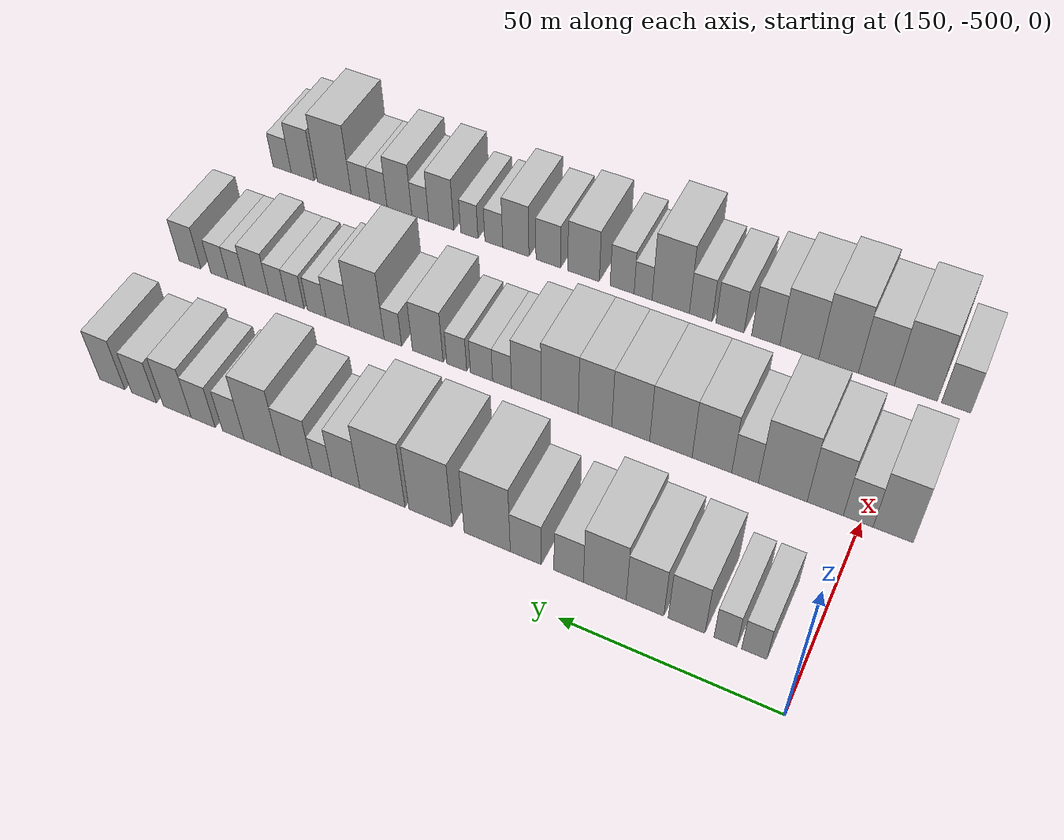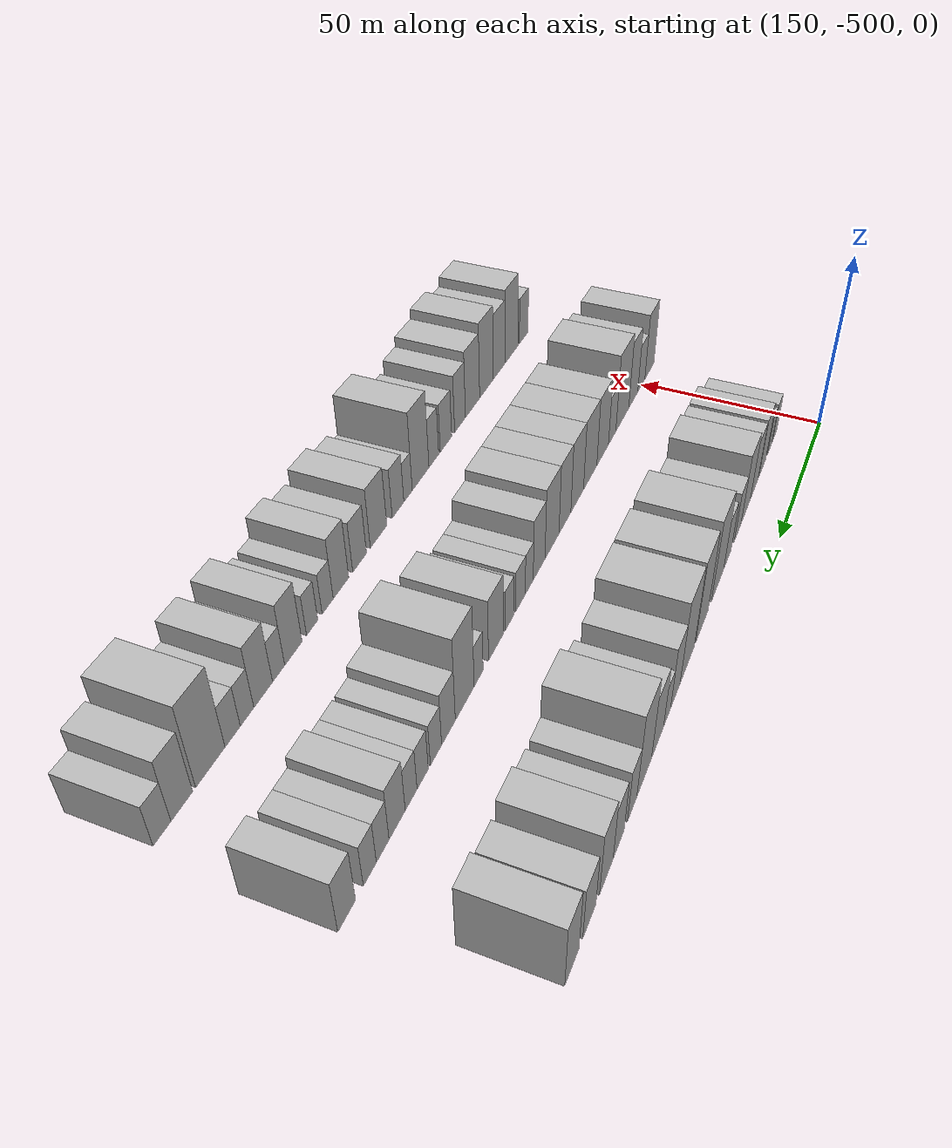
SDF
<sdf version="1.6">
 <world name="default">
  <model name="building_426">
   <static>1</static>
   <pose>170.0000 -489.7649 0 0.000000 0.000000 0.000000</pose>
   <link name="link">
    <pose>0 0 6.00 0 0 0</pose>
    <collision name="collision"><geometry><box><size>20.0000 5.5274 12.0000</size></box></geometry></collision>
    <visual name="visual">
     <cast_shadows>0</cast_shadows>
     <geometry><box><size>20.0000 5.5274 12.0000</size></box></geometry>
     <material>
      <script>
       <uri>model://HANNAS_wall/materials/scripts</uri>
       <uri>model://HANNAS_wall/materials/textures</uri>
       <name>vrc/HANNAS_wall</name>
      </script>
     </material>
    </visual>
   </link>
  </model>
  <model name="building_427">
   <static>1</static>
   <pose>170.0000 -483.4467 0 0.000000 0.000000 0.000000</pose>
   <link name="link">
    <pose>0 0 6.00 0 0 0</pose>
    <collision name="collision"><geometry><box><size>20.0000 5.1091 12.0000</size></box></geometry></collision>
    <visual name="visual">
     <cast_shadows>0</cast_shadows>
     <geometry><box><size>20.0000 5.1091 12.0000</size></box></geometry>
     <material>
      <script>
       <uri>model://HANNAS_wall/materials/scripts</uri>
       <uri>model://HANNAS_wall/materials/textures</uri>
       <name>vrc/HANNAS_wall</name>
      </script>
     </material>
    </visual>
   </link>
  </model>
  <model name="building_428">
   <static>1</static>
   <pose>170.0000 -474.7664 0 0.000000 0.000000 0.000000</pose>
   <link name="link">
    <pose>0 0 9.00 0 0 0</pose>
    <collision name="collision"><geometry><box><size>20.0000 8.2514 18.0000</size></box></geometry></collision>
    <visual name="visual">
     <cast_shadows>0</cast_shadows>
     <geometry><box><size>20.0000 8.2514 18.0000</size></box></geometry>
     <material>
      <script>
       <uri>model://HANNAS_wall/materials/scripts</uri>
       <uri>model://HANNAS_wall/materials/textures</uri>
       <name>vrc/HANNAS_wall</name>
      </script>
     </material>
    </visual>
   </link>
  </model>
  <model name="building_429">
   <static>1</static>
   <pose>170.0000 -465.3327 0 0.000000 0.000000 0.000000</pose>
   <link name="link">
    <pose>0 0 9.00 0 0 0</pose>
    <collision name="collision"><geometry><box><size>20.0000 8.6159 18.0000</size></box></geometry></collision>
    <visual name="visual">
     <cast_shadows>0</cast_shadows>
     <geometry><box><size>20.0000 8.6159 18.0000</size></box></geometry>
     <material>
      <script>
       <uri>model://HANNAS_wall/materials/scripts</uri>
       <uri>model://HANNAS_wall/materials/textures</uri>
       <name>vrc/HANNAS_wall</name>
      </script>
     </material>
    </visual>
   </link>
  </model>
  <model name="building_430">
   <static>1</static>
   <pose>170.0000 -456.0516 0 0.000000 0.000000 0.000000</pose>
   <link name="link">
    <pose>0 0 10.50 0 0 0</pose>
    <collision name="collision"><geometry><box><size>20.0000 9.9464 21.0000</size></box></geometry></collision>
    <visual name="visual">
     <cast_shadows>0</cast_shadows>
     <geometry><box><size>20.0000 9.9464 21.0000</size></box></geometry>
     <material>
      <script>
       <uri>model://HANNAS_wall/materials/scripts</uri>
       <uri>model://HANNAS_wall/materials/textures</uri>
       <name>vrc/HANNAS_wall</name>
      </script>
     </material>
    </visual>
   </link>
  </model>
  <model name="building_431">
   <static>1</static>
   <pose>170.0000 -447.6003 0 0.000000 0.000000 0.000000</pose>
   <link name="link">
    <pose>0 0 7.50 0 0 0</pose>
    <collision name="collision"><geometry><box><size>20.0000 6.9562 15.0000</size></box></geometry></collision>
    <visual name="visual">
     <cast_shadows>0</cast_shadows>
     <geometry><box><size>20.0000 6.9562 15.0000</size></box></geometry>
     <material>
      <script>
       <uri>model://HANNAS_wall/materials/scripts</uri>
       <uri>model://HANNAS_wall/materials/textures</uri>
       <name>vrc/HANNAS_wall</name>
      </script>
     </material>
    </visual>
   </link>
  </model>
  <model name="building_432">
   <static>1</static>
   <pose>170.0000 -437.3843 0 0.000000 0.000000 0.000000</pose>
   <link name="link">
    <pose>0 0 7.50 0 0 0</pose>
    <collision name="collision"><geometry><box><size>20.0000 7.4759 15.0000</size></box></geometry></collision>
    <visual name="visual">
     <cast_shadows>0</cast_shadows>
     <geometry><box><size>20.0000 7.4759 15.0000</size></box></geometry>
     <material>
      <script>
       <uri>model://HANNAS_wall/materials/scripts</uri>
       <uri>model://HANNAS_wall/materials/textures</uri>
       <name>vrc/HANNAS_wall</name>
      </script>
     </material>
    </visual>
   </link>
  </model>
  <model name="building_433">
   <static>1</static>
   <pose>170.0000 -428.0015 0 0.000000 0.000000 0.000000</pose>
   <link name="link">
    <pose>0 0 12.00 0 0 0</pose>
    <collision name="collision"><geometry><box><size>20.0000 11.2898 24.0000</size></box></geometry></collision>
    <visual name="visual">
     <cast_shadows>0</cast_shadows>
     <geometry><box><size>20.0000 11.2898 24.0000</size></box></geometry>
     <material>
      <script>
       <uri>model://HANNAS_wall/materials/scripts</uri>
       <uri>model://HANNAS_wall/materials/textures</uri>
       <name>vrc/HANNAS_wall</name>
      </script>
     </material>
    </visual>
   </link>
  </model>
  <model name="building_434">
   <static>1</static>
   <pose>170.0000 -413.9368 0 0.000000 0.000000 0.000000</pose>
   <link name="link">
    <pose>0 0 12.00 0 0 0</pose>
    <collision name="collision"><geometry><box><size>20.0000 10.8395 24.0000</size></box></geometry></collision>
    <visual name="visual">
     <cast_shadows>0</cast_shadows>
     <geometry><box><size>20.0000 10.8395 24.0000</size></box></geometry>
     <material>
      <script>
       <uri>model://HANNAS_wall/materials/scripts</uri>
       <uri>model://HANNAS_wall/materials/textures</uri>
       <name>vrc/HANNAS_wall</name>
      </script>
     </material>
    </visual>
   </link>
  </model>
  <model name="building_435">
   <static>1</static>
   <pose>170.0000 -401.7224 0 0.000000 0.000000 0.000000</pose>
   <link name="link">
    <pose>0 0 12.00 0 0 0</pose>
    <collision name="collision"><geometry><box><size>20.0000 11.5895 24.0000</size></box></geometry></collision>
    <visual name="visual">
     <cast_shadows>0</cast_shadows>
     <geometry><box><size>20.0000 11.5895 24.0000</size></box></geometry>
     <material>
      <script>
       <uri>model://HANNAS_wall/materials/scripts</uri>
       <uri>model://HANNAS_wall/materials/textures</uri>
       <name>vrc/HANNAS_wall</name>
      </script>
     </material>
    </visual>
   </link>
  </model>
  <model name="building_436">
   <static>1</static>
   <pose>170.0000 -392.2517 0 0.000000 0.000000 0.000000</pose>
   <link name="link">
    <pose>0 0 9.00 0 0 0</pose>
    <collision name="collision"><geometry><box><size>20.0000 7.3518 18.0000</size></box></geometry></collision>
    <visual name="visual">
     <cast_shadows>0</cast_shadows>
     <geometry><box><size>20.0000 7.3518 18.0000</size></box></geometry>
     <material>
      <script>
       <uri>model://HANNAS_wall/materials/scripts</uri>
       <uri>model://HANNAS_wall/materials/textures</uri>
       <name>vrc/HANNAS_wall</name>
      </script>
     </material>
    </visual>
   </link>
  </model>
  <model name="building_437">
   <static>1</static>
   <pose>170.0000 -386.0401 0 0.000000 0.000000 0.000000</pose>
   <link name="link">
    <pose>0 0 6.00 0 0 0</pose>
    <collision name="collision"><geometry><box><size>20.0000 5.0715 12.0000</size></box></geometry></collision>
    <visual name="visual">
     <cast_shadows>0</cast_shadows>
     <geometry><box><size>20.0000 5.0715 12.0000</size></box></geometry>
     <material>
      <script>
       <uri>model://HANNAS_wall/materials/scripts</uri>
       <uri>model://HANNAS_wall/materials/textures</uri>
       <name>vrc/HANNAS_wall</name>
      </script>
     </material>
    </visual>
   </link>
  </model>
  <model name="building_438">
   <static>1</static>
   <pose>170.0000 -379.2460 0 0.000000 0.000000 0.000000</pose>
   <link name="link">
    <pose>0 0 9.00 0 0 0</pose>
    <collision name="collision"><geometry><box><size>20.0000 8.5168 18.0000</size></box></geometry></collision>
    <visual name="visual">
     <cast_shadows>0</cast_shadows>
     <geometry><box><size>20.0000 8.5168 18.0000</size></box></geometry>
     <material>
      <script>
       <uri>model://HANNAS_wall/materials/scripts</uri>
       <uri>model://HANNAS_wall/materials/textures</uri>
       <name>vrc/HANNAS_wall</name>
      </script>
     </material>
    </visual>
   </link>
  </model>
  <model name="building_439">
   <static>1</static>
   <pose>170.0000 -370.0522 0 0.000000 0.000000 0.000000</pose>
   <link name="link">
    <pose>0 0 12.00 0 0 0</pose>
    <collision name="collision"><geometry><box><size>20.0000 9.8707 24.0000</size></box></geometry></collision>
    <visual name="visual">
     <cast_shadows>0</cast_shadows>
     <geometry><box><size>20.0000 9.8707 24.0000</size></box></geometry>
     <material>
      <script>
       <uri>model://HANNAS_wall/materials/scripts</uri>
       <uri>model://HANNAS_wall/materials/textures</uri>
       <name>vrc/HANNAS_wall</name>
      </script>
     </material>
    </visual>
   </link>
  </model>
  <model name="building_440">
   <static>1</static>
   <pose>170.0000 -362.1162 0 0.000000 0.000000 0.000000</pose>
   <link name="link">
    <pose>0 0 7.50 0 0 0</pose>
    <collision name="collision"><geometry><box><size>20.0000 6.0013 15.0000</size></box></geometry></collision>
    <visual name="visual">
     <cast_shadows>0</cast_shadows>
     <geometry><box><size>20.0000 6.0013 15.0000</size></box></geometry>
     <material>
      <script>
       <uri>model://HANNAS_wall/materials/scripts</uri>
       <uri>model://HANNAS_wall/materials/textures</uri>
       <name>vrc/HANNAS_wall</name>
      </script>
     </material>
    </visual>
   </link>
  </model>
  <model name="building_441">
   <static>1</static>
   <pose>170.0000 -353.7595 0 0.000000 0.000000 0.000000</pose>
   <link name="link">
    <pose>0 0 7.50 0 0 0</pose>
    <collision name="collision"><geometry><box><size>20.0000 6.7121 15.0000</size></box></geometry></collision>
    <visual name="visual">
     <cast_shadows>0</cast_shadows>
     <geometry><box><size>20.0000 6.7121 15.0000</size></box></geometry>
     <material>
      <script>
       <uri>model://HANNAS_wall/materials/scripts</uri>
       <uri>model://HANNAS_wall/materials/textures</uri>
       <name>vrc/HANNAS_wall</name>
      </script>
     </material>
    </visual>
   </link>
  </model>
  <model name="building_442">
   <static>1</static>
   <pose>170.0000 -346.4806 0 0.000000 0.000000 0.000000</pose>
   <link name="link">
    <pose>0 0 9.00 0 0 0</pose>
    <collision name="collision"><geometry><box><size>20.0000 7.8458 18.0000</size></box></geometry></collision>
    <visual name="visual">
     <cast_shadows>0</cast_shadows>
     <geometry><box><size>20.0000 7.8458 18.0000</size></box></geometry>
     <material>
      <script>
       <uri>model://HANNAS_wall/materials/scripts</uri>
       <uri>model://HANNAS_wall/materials/textures</uri>
       <name>vrc/HANNAS_wall</name>
      </script>
     </material>
    </visual>
   </link>
  </model>
  <model name="building_443">
   <static>1</static>
   <pose>170.0000 -337.0107 0 0.000000 0.000000 0.000000</pose>
   <link name="link">
    <pose>0 0 7.50 0 0 0</pose>
    <collision name="collision"><geometry><box><size>20.0000 7.0939 15.0000</size></box></geometry></collision>
    <visual name="visual">
     <cast_shadows>0</cast_shadows>
     <geometry><box><size>20.0000 7.0939 15.0000</size></box></geometry>
     <material>
      <script>
       <uri>model://HANNAS_wall/materials/scripts</uri>
       <uri>model://HANNAS_wall/materials/textures</uri>
       <name>vrc/HANNAS_wall</name>
      </script>
     </material>
    </visual>
   </link>
  </model>
  <model name="building_444">
   <static>1</static>
   <pose>170.0000 -327.8405 0 0.000000 0.000000 0.000000</pose>
   <link name="link">
    <pose>0 0 9.00 0 0 0</pose>
    <collision name="collision"><geometry><box><size>20.0000 7.2463 18.0000</size></box></geometry></collision>
    <visual name="visual">
     <cast_shadows>0</cast_shadows>
     <geometry><box><size>20.0000 7.2463 18.0000</size></box></geometry>
     <material>
      <script>
       <uri>model://HANNAS_wall/materials/scripts</uri>
       <uri>model://HANNAS_wall/materials/textures</uri>
       <name>vrc/HANNAS_wall</name>
      </script>
     </material>
    </visual>
   </link>
  </model>
  <model name="building_555">
   <static>1</static>
   <pose>210.0000 -507.2178 0 0.000000 0.000000 0.000000</pose>
   <link name="link">
    <pose>0 0 10.50 0 0 0</pose>
    <collision name="collision"><geometry><box><size>20.0000 9.0789 21.0000</size></box></geometry></collision>
    <visual name="visual">
     <cast_shadows>0</cast_shadows>
     <geometry><box><size>20.0000 9.0789 21.0000</size></box></geometry>
     <material>
      <script>
       <uri>model://HANNAS_wall/materials/scripts</uri>
       <uri>model://HANNAS_wall/materials/textures</uri>
       <name>vrc/HANNAS_wall</name>
      </script>
     </material>
    </visual>
   </link>
  </model>
  <model name="building_556">
   <static>1</static>
   <pose>210.0000 -499.2651 0 0.000000 0.000000 0.000000</pose>
   <link name="link">
    <pose>0 0 7.50 0 0 0</pose>
    <collision name="collision"><geometry><box><size>20.0000 6.8264 15.0000</size></box></geometry></collision>
    <visual name="visual">
     <cast_shadows>0</cast_shadows>
     <geometry><box><size>20.0000 6.8264 15.0000</size></box></geometry>
     <material>
      <script>
       <uri>model://HANNAS_wall/materials/scripts</uri>
       <uri>model://HANNAS_wall/materials/textures</uri>
       <name>vrc/HANNAS_wall</name>
      </script>
     </material>
    </visual>
   </link>
  </model>
  <model name="building_557">
   <static>1</static>
   <pose>210.0000 -491.6516 0 0.000000 0.000000 0.000000</pose>
   <link name="link">
    <pose>0 0 10.50 0 0 0</pose>
    <collision name="collision"><geometry><box><size>20.0000 8.4005 21.0000</size></box></geometry></collision>
    <visual name="visual">
     <cast_shadows>0</cast_shadows>
     <geometry><box><size>20.0000 8.4005 21.0000</size></box></geometry>
     <material>
      <script>
       <uri>model://HANNAS_wall/materials/scripts</uri>
       <uri>model://HANNAS_wall/materials/textures</uri>
       <name>vrc/HANNAS_wall</name>
      </script>
     </material>
    </visual>
   </link>
  </model>
  <model name="building_558">
   <static>1</static>
   <pose>210.0000 -481.6776 0 0.000000 0.000000 0.000000</pose>
   <link name="link">
    <pose>0 0 12.00 0 0 0</pose>
    <collision name="collision"><geometry><box><size>20.0000 11.5476 24.0000</size></box></geometry></collision>
    <visual name="visual">
     <cast_shadows>0</cast_shadows>
     <geometry><box><size>20.0000 11.5476 24.0000</size></box></geometry>
     <material>
      <script>
       <uri>model://HANNAS_wall/materials/scripts</uri>
       <uri>model://HANNAS_wall/materials/textures</uri>
       <name>vrc/HANNAS_wall</name>
      </script>
     </material>
    </visual>
   </link>
  </model>
  <model name="building_559">
   <static>1</static>
   <pose>210.0000 -472.7165 0 0.000000 0.000000 0.000000</pose>
   <link name="link">
    <pose>0 0 7.50 0 0 0</pose>
    <collision name="collision"><geometry><box><size>20.0000 6.3744 15.0000</size></box></geometry></collision>
    <visual name="visual">
     <cast_shadows>0</cast_shadows>
     <geometry><box><size>20.0000 6.3744 15.0000</size></box></geometry>
     <material>
      <script>
       <uri>model://HANNAS_wall/materials/scripts</uri>
       <uri>model://HANNAS_wall/materials/textures</uri>
       <name>vrc/HANNAS_wall</name>
      </script>
     </material>
    </visual>
   </link>
  </model>
  <model name="building_560">
   <static>1</static>
   <pose>210.0000 -464.7133 0 0.000000 0.000000 0.000000</pose>
   <link name="link">
    <pose>0 0 10.50 0 0 0</pose>
    <collision name="collision"><geometry><box><size>20.0000 9.6320 21.0000</size></box></geometry></collision>
    <visual name="visual">
     <cast_shadows>0</cast_shadows>
     <geometry><box><size>20.0000 9.6320 21.0000</size></box></geometry>
     <material>
      <script>
       <uri>model://HANNAS_wall/materials/scripts</uri>
       <uri>model://HANNAS_wall/materials/textures</uri>
       <name>vrc/HANNAS_wall</name>
      </script>
     </material>
    </visual>
   </link>
  </model>
  <model name="building_561">
   <static>1</static>
   <pose>210.0000 -454.6534 0 0.000000 0.000000 0.000000</pose>
   <link name="link">
    <pose>0 0 10.50 0 0 0</pose>
    <collision name="collision"><geometry><box><size>20.0000 10.4879 21.0000</size></box></geometry></collision>
    <visual name="visual">
     <cast_shadows>0</cast_shadows>
     <geometry><box><size>20.0000 10.4879 21.0000</size></box></geometry>
     <material>
      <script>
       <uri>model://HANNAS_wall/materials/scripts</uri>
       <uri>model://HANNAS_wall/materials/textures</uri>
       <name>vrc/HANNAS_wall</name>
      </script>
     </material>
    </visual>
   </link>
  </model>
  <model name="building_562">
   <static>1</static>
   <pose>210.0000 -444.6317 0 0.000000 0.000000 0.000000</pose>
   <link name="link">
    <pose>0 0 10.50 0 0 0</pose>
    <collision name="collision"><geometry><box><size>20.0000 9.5554 21.0000</size></box></geometry></collision>
    <visual name="visual">
     <cast_shadows>0</cast_shadows>
     <geometry><box><size>20.0000 9.5554 21.0000</size></box></geometry>
     <material>
      <script>
       <uri>model://HANNAS_wall/materials/scripts</uri>
       <uri>model://HANNAS_wall/materials/textures</uri>
       <name>vrc/HANNAS_wall</name>
      </script>
     </material>
    </visual>
   </link>
  </model>
  <model name="building_563">
   <static>1</static>
   <pose>210.0000 -435.5617 0 0.000000 0.000000 0.000000</pose>
   <link name="link">
    <pose>0 0 10.50 0 0 0</pose>
    <collision name="collision"><geometry><box><size>20.0000 8.5847 21.0000</size></box></geometry></collision>
    <visual name="visual">
     <cast_shadows>0</cast_shadows>
     <geometry><box><size>20.0000 8.5847 21.0000</size></box></geometry>
     <material>
      <script>
       <uri>model://HANNAS_wall/materials/scripts</uri>
       <uri>model://HANNAS_wall/materials/textures</uri>
       <name>vrc/HANNAS_wall</name>
      </script>
     </material>
    </visual>
   </link>
  </model>
  <model name="building_564">
   <static>1</static>
   <pose>210.0000 -426.4533 0 0.000000 0.000000 0.000000</pose>
   <link name="link">
    <pose>0 0 10.50 0 0 0</pose>
    <collision name="collision"><geometry><box><size>20.0000 9.6320 21.0000</size></box></geometry></collision>
    <visual name="visual">
     <cast_shadows>0</cast_shadows>
     <geometry><box><size>20.0000 9.6320 21.0000</size></box></geometry>
     <material>
      <script>
       <uri>model://HANNAS_wall/materials/scripts</uri>
       <uri>model://HANNAS_wall/materials/textures</uri>
       <name>vrc/HANNAS_wall</name>
      </script>
     </material>
    </visual>
   </link>
  </model>
  <model name="building_565">
   <static>1</static>
   <pose>210.0000 -417.7530 0 0.000000 0.000000 0.000000</pose>
   <link name="link">
    <pose>0 0 9.00 0 0 0</pose>
    <collision name="collision"><geometry><box><size>20.0000 7.7686 18.0000</size></box></geometry></collision>
    <visual name="visual">
     <cast_shadows>0</cast_shadows>
     <geometry><box><size>20.0000 7.7686 18.0000</size></box></geometry>
     <material>
      <script>
       <uri>model://HANNAS_wall/materials/scripts</uri>
       <uri>model://HANNAS_wall/materials/textures</uri>
       <name>vrc/HANNAS_wall</name>
      </script>
     </material>
    </visual>
   </link>
  </model>
  <model name="building_566">
   <static>1</static>
   <pose>210.0000 -411.3527 0 0.000000 0.000000 0.000000</pose>
   <link name="link">
    <pose>0 0 6.00 0 0 0</pose>
    <collision name="collision"><geometry><box><size>20.0000 5.0319 12.0000</size></box></geometry></collision>
    <visual name="visual">
     <cast_shadows>0</cast_shadows>
     <geometry><box><size>20.0000 5.0319 12.0000</size></box></geometry>
     <material>
      <script>
       <uri>model://HANNAS_wall/materials/scripts</uri>
       <uri>model://HANNAS_wall/materials/textures</uri>
       <name>vrc/HANNAS_wall</name>
      </script>
     </material>
    </visual>
   </link>
  </model>
  <model name="building_567">
   <static>1</static>
   <pose>210.0000 -405.8599 0 0.000000 0.000000 0.000000</pose>
   <link name="link">
    <pose>0 0 6.00 0 0 0</pose>
    <collision name="collision"><geometry><box><size>20.0000 5.9537 12.0000</size></box></geometry></collision>
    <visual name="visual">
     <cast_shadows>0</cast_shadows>
     <geometry><box><size>20.0000 5.9537 12.0000</size></box></geometry>
     <material>
      <script>
       <uri>model://HANNAS_wall/materials/scripts</uri>
       <uri>model://HANNAS_wall/materials/textures</uri>
       <name>vrc/HANNAS_wall</name>
      </script>
     </material>
    </visual>
   </link>
  </model>
  <model name="building_568">
   <static>1</static>
   <pose>210.0000 -399.1806 0 0.000000 0.000000 0.000000</pose>
   <link name="link">
    <pose>0 0 6.00 0 0 0</pose>
    <collision name="collision"><geometry><box><size>20.0000 5.4050 12.0000</size></box></geometry></collision>
    <visual name="visual">
     <cast_shadows>0</cast_shadows>
     <geometry><box><size>20.0000 5.4050 12.0000</size></box></geometry>
     <material>
      <script>
       <uri>model://HANNAS_wall/materials/scripts</uri>
       <uri>model://HANNAS_wall/materials/textures</uri>
       <name>vrc/HANNAS_wall</name>
      </script>
     </material>
    </visual>
   </link>
  </model>
  <model name="building_569">
   <static>1</static>
   <pose>210.0000 -391.2524 0 0.000000 0.000000 0.000000</pose>
   <link name="link">
    <pose>0 0 9.00 0 0 0</pose>
    <collision name="collision"><geometry><box><size>20.0000 8.4514 18.0000</size></box></geometry></collision>
    <visual name="visual">
     <cast_shadows>0</cast_shadows>
     <geometry><box><size>20.0000 8.4514 18.0000</size></box></geometry>
     <material>
      <script>
       <uri>model://HANNAS_wall/materials/scripts</uri>
       <uri>model://HANNAS_wall/materials/textures</uri>
       <name>vrc/HANNAS_wall</name>
      </script>
     </material>
    </visual>
   </link>
  </model>
  <model name="building_570">
   <static>1</static>
   <pose>210.0000 -381.5879 0 0.000000 0.000000 0.000000</pose>
   <link name="link">
    <pose>0 0 6.00 0 0 0</pose>
    <collision name="collision"><geometry><box><size>20.0000 4.8775 12.0000</size></box></geometry></collision>
    <visual name="visual">
     <cast_shadows>0</cast_shadows>
     <geometry><box><size>20.0000 4.8775 12.0000</size></box></geometry>
     <material>
      <script>
       <uri>model://HANNAS_wall/materials/scripts</uri>
       <uri>model://HANNAS_wall/materials/textures</uri>
       <name>vrc/HANNAS_wall</name>
      </script>
     </material>
    </visual>
   </link>
  </model>
  <model name="building_571">
   <static>1</static>
   <pose>210.0000 -374.2663 0 0.000000 0.000000 0.000000</pose>
   <link name="link">
    <pose>0 0 12.00 0 0 0</pose>
    <collision name="collision"><geometry><box><size>20.0000 9.7659 24.0000</size></box></geometry></collision>
    <visual name="visual">
     <cast_shadows>0</cast_shadows>
     <geometry><box><size>20.0000 9.7659 24.0000</size></box></geometry>
     <material>
      <script>
       <uri>model://HANNAS_wall/materials/scripts</uri>
       <uri>model://HANNAS_wall/materials/textures</uri>
       <name>vrc/HANNAS_wall</name>
      </script>
     </material>
    </visual>
   </link>
  </model>
  <model name="building_572">
   <static>1</static>
   <pose>210.0000 -365.9811 0 0.000000 0.000000 0.000000</pose>
   <link name="link">
    <pose>0 0 7.50 0 0 0</pose>
    <collision name="collision"><geometry><box><size>20.0000 6.8044 15.0000</size></box></geometry></collision>
    <visual name="visual">
     <cast_shadows>0</cast_shadows>
     <geometry><box><size>20.0000 6.8044 15.0000</size></box></geometry>
     <material>
      <script>
       <uri>model://HANNAS_wall/materials/scripts</uri>
       <uri>model://HANNAS_wall/materials/textures</uri>
       <name>vrc/HANNAS_wall</name>
      </script>
     </material>
    </visual>
   </link>
  </model>
  <model name="building_573">
   <static>1</static>
   <pose>210.0000 -359.8956 0 0.000000 0.000000 0.000000</pose>
   <link name="link">
    <pose>0 0 6.00 0 0 0</pose>
    <collision name="collision"><geometry><box><size>20.0000 5.3666 12.0000</size></box></geometry></collision>
    <visual name="visual">
     <cast_shadows>0</cast_shadows>
     <geometry><box><size>20.0000 5.3666 12.0000</size></box></geometry>
     <material>
      <script>
       <uri>model://HANNAS_wall/materials/scripts</uri>
       <uri>model://HANNAS_wall/materials/textures</uri>
       <name>vrc/HANNAS_wall</name>
      </script>
     </material>
    </visual>
   </link>
  </model>
  <model name="building_574">
   <static>1</static>
   <pose>210.0000 -353.6460 0 0.000000 0.000000 0.000000</pose>
   <link name="link">
    <pose>0 0 6.00 0 0 0</pose>
    <collision name="collision"><geometry><box><size>20.0000 5.1326 12.0000</size></box></geometry></collision>
    <visual name="visual">
     <cast_shadows>0</cast_shadows>
     <geometry><box><size>20.0000 5.1326 12.0000</size></box></geometry>
     <material>
      <script>
       <uri>model://HANNAS_wall/materials/scripts</uri>
       <uri>model://HANNAS_wall/materials/textures</uri>
       <name>vrc/HANNAS_wall</name>
      </script>
     </material>
    </visual>
   </link>
  </model>
  <model name="building_575">
   <static>1</static>
   <pose>210.0000 -348.4470 0 0.000000 0.000000 0.000000</pose>
   <link name="link">
    <pose>0 0 6.00 0 0 0</pose>
    <collision name="collision"><geometry><box><size>20.0000 5.2654 12.0000</size></box></geometry></collision>
    <visual name="visual">
     <cast_shadows>0</cast_shadows>
     <geometry><box><size>20.0000 5.2654 12.0000</size></box></geometry>
     <material>
      <script>
       <uri>model://HANNAS_wall/materials/scripts</uri>
       <uri>model://HANNAS_wall/materials/textures</uri>
       <name>vrc/HANNAS_wall</name>
      </script>
     </material>
    </visual>
   </link>
  </model>
  <model name="building_576">
   <static>1</static>
   <pose>210.0000 -342.3441 0 0.000000 0.000000 0.000000</pose>
   <link name="link">
    <pose>0 0 7.50 0 0 0</pose>
    <collision name="collision"><geometry><box><size>20.0000 6.9403 15.0000</size></box></geometry></collision>
    <visual name="visual">
     <cast_shadows>0</cast_shadows>
     <geometry><box><size>20.0000 6.9403 15.0000</size></box></geometry>
     <material>
      <script>
       <uri>model://HANNAS_wall/materials/scripts</uri>
       <uri>model://HANNAS_wall/materials/textures</uri>
       <name>vrc/HANNAS_wall</name>
      </script>
     </material>
    </visual>
   </link>
  </model>
  <model name="building_577">
   <static>1</static>
   <pose>210.0000 -336.2616 0 0.000000 0.000000 0.000000</pose>
   <link name="link">
    <pose>0 0 6.00 0 0 0</pose>
    <collision name="collision"><geometry><box><size>20.0000 5.2246 12.0000</size></box></geometry></collision>
    <visual name="visual">
     <cast_shadows>0</cast_shadows>
     <geometry><box><size>20.0000 5.2246 12.0000</size></box></geometry>
     <material>
      <script>
       <uri>model://HANNAS_wall/materials/scripts</uri>
       <uri>model://HANNAS_wall/materials/textures</uri>
       <name>vrc/HANNAS_wall</name>
      </script>
     </material>
    </visual>
   </link>
  </model>
  <model name="building_578">
   <static>1</static>
   <pose>210.0000 -331.0444 0 0.000000 0.000000 0.000000</pose>
   <link name="link">
    <pose>0 0 6.00 0 0 0</pose>
    <collision name="collision"><geometry><box><size>20.0000 5.2099 12.0000</size></box></geometry></collision>
    <visual name="visual">
     <cast_shadows>0</cast_shadows>
     <geometry><box><size>20.0000 5.2099 12.0000</size></box></geometry>
     <material>
      <script>
       <uri>model://HANNAS_wall/materials/scripts</uri>
       <uri>model://HANNAS_wall/materials/textures</uri>
       <name>vrc/HANNAS_wall</name>
      </script>
     </material>
    </visual>
   </link>
  </model>
  <model name="building_579">
   <static>1</static>
   <pose>210.0000 -322.0977 0 0.000000 0.000000 0.000000</pose>
   <link name="link">
    <pose>0 0 7.50 0 0 0</pose>
    <collision name="collision"><geometry><box><size>20.0000 6.6834 15.0000</size></box></geometry></collision>
    <visual name="visual">
     <cast_shadows>0</cast_shadows>
     <geometry><box><size>20.0000 6.6834 15.0000</size></box></geometry>
     <material>
      <script>
       <uri>model://HANNAS_wall/materials/scripts</uri>
       <uri>model://HANNAS_wall/materials/textures</uri>
       <name>vrc/HANNAS_wall</name>
      </script>
     </material>
    </visual>
   </link>
  </model>
  <model name="building_701">
   <static>1</static>
   <pose>250.0000 -510.4082 0 0.000000 0.000000 0.000000</pose>
   <link name="link">
    <pose>0 0 7.50 0 0 0</pose>
    <collision name="collision"><geometry><box><size>20.0000 7.0350 15.0000</size></box></geometry></collision>
    <visual name="visual">
     <cast_shadows>0</cast_shadows>
     <geometry><box><size>20.0000 7.0350 15.0000</size></box></geometry>
     <material>
      <script>
       <uri>model://HANNAS_wall/materials/scripts</uri>
       <uri>model://HANNAS_wall/materials/textures</uri>
       <name>vrc/HANNAS_wall</name>
      </script>
     </material>
    </visual>
   </link>
  </model>
  <model name="building_702">
   <static>1</static>
   <pose>250.0000 -500.6606 0 0.000000 0.000000 0.000000</pose>
   <link name="link">
    <pose>0 0 12.00 0 0 0</pose>
    <collision name="collision"><geometry><box><size>20.0000 10.4601 24.0000</size></box></geometry></collision>
    <visual name="visual">
     <cast_shadows>0</cast_shadows>
     <geometry><box><size>20.0000 10.4601 24.0000</size></box></geometry>
     <material>
      <script>
       <uri>model://HANNAS_wall/materials/scripts</uri>
       <uri>model://HANNAS_wall/materials/textures</uri>
       <name>vrc/HANNAS_wall</name>
      </script>
     </material>
    </visual>
   </link>
  </model>
  <model name="building_703">
   <static>1</static>
   <pose>250.0000 -490.9945 0 0.000000 0.000000 0.000000</pose>
   <link name="link">
    <pose>0 0 10.50 0 0 0</pose>
    <collision name="collision"><geometry><box><size>20.0000 8.8722 21.0000</size></box></geometry></collision>
    <visual name="visual">
     <cast_shadows>0</cast_shadows>
     <geometry><box><size>20.0000 8.8722 21.0000</size></box></geometry>
     <material>
      <script>
       <uri>model://HANNAS_wall/materials/scripts</uri>
       <uri>model://HANNAS_wall/materials/textures</uri>
       <name>vrc/HANNAS_wall</name>
      </script>
     </material>
    </visual>
   </link>
  </model>
  <model name="building_704">
   <static>1</static>
   <pose>250.0000 -481.6037 0 0.000000 0.000000 0.000000</pose>
   <link name="link">
    <pose>0 0 12.00 0 0 0</pose>
    <collision name="collision"><geometry><box><size>20.0000 9.9094 24.0000</size></box></geometry></collision>
    <visual name="visual">
     <cast_shadows>0</cast_shadows>
     <geometry><box><size>20.0000 9.9094 24.0000</size></box></geometry>
     <material>
      <script>
       <uri>model://HANNAS_wall/materials/scripts</uri>
       <uri>model://HANNAS_wall/materials/textures</uri>
       <name>vrc/HANNAS_wall</name>
      </script>
     </material>
    </visual>
   </link>
  </model>
  <model name="building_705">
   <static>1</static>
   <pose>250.0000 -471.6895 0 0.000000 0.000000 0.000000</pose>
   <link name="link">
    <pose>0 0 10.50 0 0 0</pose>
    <collision name="collision"><geometry><box><size>20.0000 9.9190 21.0000</size></box></geometry></collision>
    <visual name="visual">
     <cast_shadows>0</cast_shadows>
     <geometry><box><size>20.0000 9.9190 21.0000</size></box></geometry>
     <material>
      <script>
       <uri>model://HANNAS_wall/materials/scripts</uri>
       <uri>model://HANNAS_wall/materials/textures</uri>
       <name>vrc/HANNAS_wall</name>
      </script>
     </material>
    </visual>
   </link>
  </model>
  <model name="building_706">
   <static>1</static>
   <pose>250.0000 -463.0839 0 0.000000 0.000000 0.000000</pose>
   <link name="link">
    <pose>0 0 9.00 0 0 0</pose>
    <collision name="collision"><geometry><box><size>20.0000 7.2922 18.0000</size></box></geometry></collision>
    <visual name="visual">
     <cast_shadows>0</cast_shadows>
     <geometry><box><size>20.0000 7.2922 18.0000</size></box></geometry>
     <material>
      <script>
       <uri>model://HANNAS_wall/materials/scripts</uri>
       <uri>model://HANNAS_wall/materials/textures</uri>
       <name>vrc/HANNAS_wall</name>
      </script>
     </material>
    </visual>
   </link>
  </model>
  <model name="building_707">
   <static>1</static>
   <pose>250.0000 -453.7722 0 0.000000 0.000000 0.000000</pose>
   <link name="link">
    <pose>0 0 7.50 0 0 0</pose>
    <collision name="collision"><geometry><box><size>20.0000 7.3312 15.0000</size></box></geometry></collision>
    <visual name="visual">
     <cast_shadows>0</cast_shadows>
     <geometry><box><size>20.0000 7.3312 15.0000</size></box></geometry>
     <material>
      <script>
       <uri>model://HANNAS_wall/materials/scripts</uri>
       <uri>model://HANNAS_wall/materials/textures</uri>
       <name>vrc/HANNAS_wall</name>
      </script>
     </material>
    </visual>
   </link>
  </model>
  <model name="building_708">
   <static>1</static>
   <pose>250.0000 -446.0794 0 0.000000 0.000000 0.000000</pose>
   <link name="link">
    <pose>0 0 7.50 0 0 0</pose>
    <collision name="collision"><geometry><box><size>20.0000 6.0543 15.0000</size></box></geometry></collision>
    <visual name="visual">
     <cast_shadows>0</cast_shadows>
     <geometry><box><size>20.0000 6.0543 15.0000</size></box></geometry>
     <material>
      <script>
       <uri>model://HANNAS_wall/materials/scripts</uri>
       <uri>model://HANNAS_wall/materials/textures</uri>
       <name>vrc/HANNAS_wall</name>
      </script>
     </material>
    </visual>
   </link>
  </model>
  <model name="building_709">
   <static>1</static>
   <pose>250.0000 -438.0389 0 0.000000 0.000000 0.000000</pose>
   <link name="link">
    <pose>0 0 12.00 0 0 0</pose>
    <collision name="collision"><geometry><box><size>20.0000 10.0268 24.0000</size></box></geometry></collision>
    <visual name="visual">
     <cast_shadows>0</cast_shadows>
     <geometry><box><size>20.0000 10.0268 24.0000</size></box></geometry>
     <material>
      <script>
       <uri>model://HANNAS_wall/materials/scripts</uri>
       <uri>model://HANNAS_wall/materials/textures</uri>
       <name>vrc/HANNAS_wall</name>
      </script>
     </material>
    </visual>
   </link>
  </model>
  <model name="building_710">
   <static>1</static>
   <pose>250.0000 -430.5880 0 0.000000 0.000000 0.000000</pose>
   <link name="link">
    <pose>0 0 6.00 0 0 0</pose>
    <collision name="collision"><geometry><box><size>20.0000 4.8750 12.0000</size></box></geometry></collision>
    <visual name="visual">
     <cast_shadows>0</cast_shadows>
     <geometry><box><size>20.0000 4.8750 12.0000</size></box></geometry>
     <material>
      <script>
       <uri>model://HANNAS_wall/materials/scripts</uri>
       <uri>model://HANNAS_wall/materials/textures</uri>
       <name>vrc/HANNAS_wall</name>
      </script>
     </material>
    </visual>
   </link>
  </model>
  <model name="building_711">
   <static>1</static>
   <pose>250.0000 -424.8645 0 0.000000 0.000000 0.000000</pose>
   <link name="link">
    <pose>0 0 7.50 0 0 0</pose>
    <collision name="collision"><geometry><box><size>20.0000 6.5720 15.0000</size></box></geometry></collision>
    <visual name="visual">
     <cast_shadows>0</cast_shadows>
     <geometry><box><size>20.0000 6.5720 15.0000</size></box></geometry>
     <material>
      <script>
       <uri>model://HANNAS_wall/materials/scripts</uri>
       <uri>model://HANNAS_wall/materials/textures</uri>
       <name>vrc/HANNAS_wall</name>
      </script>
     </material>
    </visual>
   </link>
  </model>
  <model name="building_712">
   <static>1</static>
   <pose>250.0000 -414.1763 0 0.000000 0.000000 0.000000</pose>
   <link name="link">
    <pose>0 0 9.00 0 0 0</pose>
    <collision name="collision"><geometry><box><size>20.0000 8.8043 18.0000</size></box></geometry></collision>
    <visual name="visual">
     <cast_shadows>0</cast_shadows>
     <geometry><box><size>20.0000 8.8043 18.0000</size></box></geometry>
     <material>
      <script>
       <uri>model://HANNAS_wall/materials/scripts</uri>
       <uri>model://HANNAS_wall/materials/textures</uri>
       <name>vrc/HANNAS_wall</name>
      </script>
     </material>
    </visual>
   </link>
  </model>
  <model name="building_713">
   <static>1</static>
   <pose>250.0000 -404.2823 0 0.000000 0.000000 0.000000</pose>
   <link name="link">
    <pose>0 0 7.50 0 0 0</pose>
    <collision name="collision"><geometry><box><size>20.0000 6.9837 15.0000</size></box></geometry></collision>
    <visual name="visual">
     <cast_shadows>0</cast_shadows>
     <geometry><box><size>20.0000 6.9837 15.0000</size></box></geometry>
     <material>
      <script>
       <uri>model://HANNAS_wall/materials/scripts</uri>
       <uri>model://HANNAS_wall/materials/textures</uri>
       <name>vrc/HANNAS_wall</name>
      </script>
     </material>
    </visual>
   </link>
  </model>
  <model name="building_714">
   <static>1</static>
   <pose>250.0000 -395.0349 0 0.000000 0.000000 0.000000</pose>
   <link name="link">
    <pose>0 0 9.00 0 0 0</pose>
    <collision name="collision"><geometry><box><size>20.0000 7.5111 18.0000</size></box></geometry></collision>
    <visual name="visual">
     <cast_shadows>0</cast_shadows>
     <geometry><box><size>20.0000 7.5111 18.0000</size></box></geometry>
     <material>
      <script>
       <uri>model://HANNAS_wall/materials/scripts</uri>
       <uri>model://HANNAS_wall/materials/textures</uri>
       <name>vrc/HANNAS_wall</name>
      </script>
     </material>
    </visual>
   </link>
  </model>
  <model name="building_715">
   <static>1</static>
   <pose>250.0000 -388.6736 0 0.000000 0.000000 0.000000</pose>
   <link name="link">
    <pose>0 0 6.00 0 0 0</pose>
    <collision name="collision"><geometry><box><size>20.0000 5.2116 12.0000</size></box></geometry></collision>
    <visual name="visual">
     <cast_shadows>0</cast_shadows>
     <geometry><box><size>20.0000 5.2116 12.0000</size></box></geometry>
     <material>
      <script>
       <uri>model://HANNAS_wall/materials/scripts</uri>
       <uri>model://HANNAS_wall/materials/textures</uri>
       <name>vrc/HANNAS_wall</name>
      </script>
     </material>
    </visual>
   </link>
  </model>
  <model name="building_716">
   <static>1</static>
   <pose>250.0000 -381.5344 0 0.000000 0.000000 0.000000</pose>
   <link name="link">
    <pose>0 0 6.00 0 0 0</pose>
    <collision name="collision"><geometry><box><size>20.0000 5.0667 12.0000</size></box></geometry></collision>
    <visual name="visual">
     <cast_shadows>0</cast_shadows>
     <geometry><box><size>20.0000 5.0667 12.0000</size></box></geometry>
     <material>
      <script>
       <uri>model://HANNAS_wall/materials/scripts</uri>
       <uri>model://HANNAS_wall/materials/textures</uri>
       <name>vrc/HANNAS_wall</name>
      </script>
     </material>
    </visual>
   </link>
  </model>
  <model name="building_717">
   <static>1</static>
   <pose>250.0000 -373.2602 0 0.000000 0.000000 0.000000</pose>
   <link name="link">
    <pose>0 0 9.00 0 0 0</pose>
    <collision name="collision"><geometry><box><size>20.0000 7.4817 18.0000</size></box></geometry></collision>
    <visual name="visual">
     <cast_shadows>0</cast_shadows>
     <geometry><box><size>20.0000 7.4817 18.0000</size></box></geometry>
     <material>
      <script>
       <uri>model://HANNAS_wall/materials/scripts</uri>
       <uri>model://HANNAS_wall/materials/textures</uri>
       <name>vrc/HANNAS_wall</name>
      </script>
     </material>
    </visual>
   </link>
  </model>
  <model name="building_718">
   <static>1</static>
   <pose>250.0000 -366.9772 0 0.000000 0.000000 0.000000</pose>
   <link name="link">
    <pose>0 0 6.00 0 0 0</pose>
    <collision name="collision"><geometry><box><size>20.0000 5.0844 12.0000</size></box></geometry></collision>
    <visual name="visual">
     <cast_shadows>0</cast_shadows>
     <geometry><box><size>20.0000 5.0844 12.0000</size></box></geometry>
     <material>
      <script>
       <uri>model://HANNAS_wall/materials/scripts</uri>
       <uri>model://HANNAS_wall/materials/textures</uri>
       <name>vrc/HANNAS_wall</name>
      </script>
     </material>
    </visual>
   </link>
  </model>
  <model name="building_719">
   <static>1</static>
   <pose>250.0000 -360.6798 0 0.000000 0.000000 0.000000</pose>
   <link name="link">
    <pose>0 0 9.00 0 0 0</pose>
    <collision name="collision"><geometry><box><size>20.0000 7.5104 18.0000</size></box></geometry></collision>
    <visual name="visual">
     <cast_shadows>0</cast_shadows>
     <geometry><box><size>20.0000 7.5104 18.0000</size></box></geometry>
     <material>
      <script>
       <uri>model://HANNAS_wall/materials/scripts</uri>
       <uri>model://HANNAS_wall/materials/textures</uri>
       <name>vrc/HANNAS_wall</name>
      </script>
     </material>
    </visual>
   </link>
  </model>
  <model name="building_720">
   <static>1</static>
   <pose>250.0000 -354.2950 0 0.000000 0.000000 0.000000</pose>
   <link name="link">
    <pose>0 0 6.00 0 0 0</pose>
    <collision name="collision"><geometry><box><size>20.0000 5.2592 12.0000</size></box></geometry></collision>
    <visual name="visual">
     <cast_shadows>0</cast_shadows>
     <geometry><box><size>20.0000 5.2592 12.0000</size></box></geometry>
     <material>
      <script>
       <uri>model://HANNAS_wall/materials/scripts</uri>
       <uri>model://HANNAS_wall/materials/textures</uri>
       <name>vrc/HANNAS_wall</name>
      </script>
     </material>
    </visual>
   </link>
  </model>
  <model name="building_721">
   <static>1</static>
   <pose>250.0000 -348.8041 0 0.000000 0.000000 0.000000</pose>
   <link name="link">
    <pose>0 0 6.00 0 0 0</pose>
    <collision name="collision"><geometry><box><size>20.0000 5.7226 12.0000</size></box></geometry></collision>
    <visual name="visual">
     <cast_shadows>0</cast_shadows>
     <geometry><box><size>20.0000 5.7226 12.0000</size></box></geometry>
     <material>
      <script>
       <uri>model://HANNAS_wall/materials/scripts</uri>
       <uri>model://HANNAS_wall/materials/textures</uri>
       <name>vrc/HANNAS_wall</name>
      </script>
     </material>
    </visual>
   </link>
  </model>
  <model name="building_722">
   <static>1</static>
   <pose>250.0000 -340.6876 0 0.000000 0.000000 0.000000</pose>
   <link name="link">
    <pose>0 0 12.00 0 0 0</pose>
    <collision name="collision"><geometry><box><size>20.0000 10.5104 24.0000</size></box></geometry></collision>
    <visual name="visual">
     <cast_shadows>0</cast_shadows>
     <geometry><box><size>20.0000 10.5104 24.0000</size></box></geometry>
     <material>
      <script>
       <uri>model://HANNAS_wall/materials/scripts</uri>
       <uri>model://HANNAS_wall/materials/textures</uri>
       <name>vrc/HANNAS_wall</name>
      </script>
     </material>
    </visual>
   </link>
  </model>
  <model name="building_723">
   <static>1</static>
   <pose>250.0000 -330.7716 0 0.000000 0.000000 0.000000</pose>
   <link name="link">
    <pose>0 0 9.00 0 0 0</pose>
    <collision name="collision"><geometry><box><size>20.0000 7.3216 18.0000</size></box></geometry></collision>
    <visual name="visual">
     <cast_shadows>0</cast_shadows>
     <geometry><box><size>20.0000 7.3216 18.0000</size></box></geometry>
     <material>
      <script>
       <uri>model://HANNAS_wall/materials/scripts</uri>
       <uri>model://HANNAS_wall/materials/textures</uri>
       <name>vrc/HANNAS_wall</name>
      </script>
     </material>
    </visual>
   </link>
  </model>
  <model name="building_724">
   <static>1</static>
   <pose>250.0000 -324.2247 0 0.000000 0.000000 0.000000</pose>
   <link name="link">
    <pose>0 0 6.00 0 0 0</pose>
    <collision name="collision"><geometry><box><size>20.0000 5.7721 12.0000</size></box></geometry></collision>
    <visual name="visual">
     <cast_shadows>0</cast_shadows>
     <geometry><box><size>20.0000 5.7721 12.0000</size></box></geometry>
     <material>
      <script>
       <uri>model://HANNAS_wall/materials/scripts</uri>
       <uri>model://HANNAS_wall/materials/textures</uri>
       <name>vrc/HANNAS_wall</name>
      </script>
     </material>
    </visual>
   </link>
  </model>
 </world>
</sdf>
